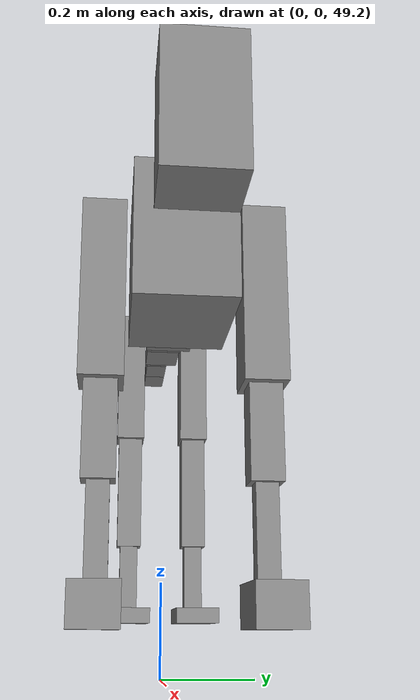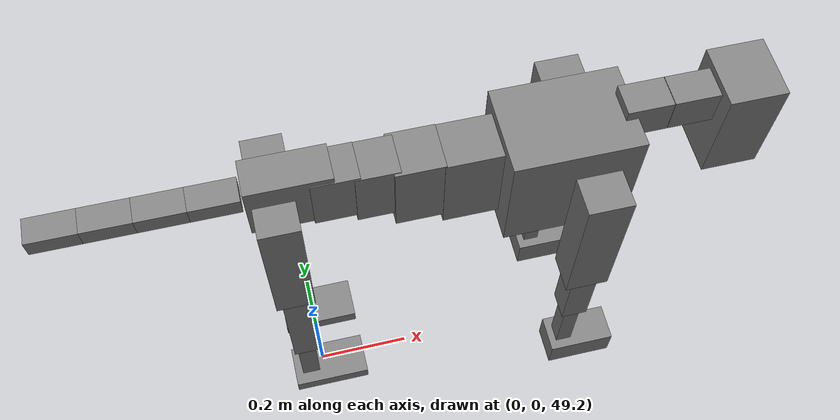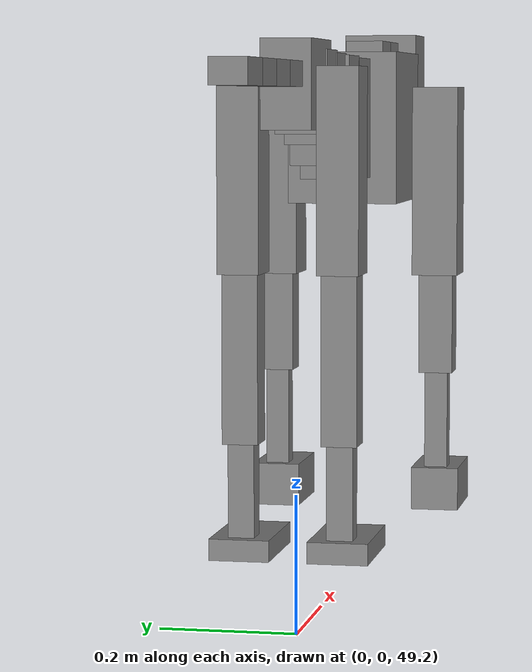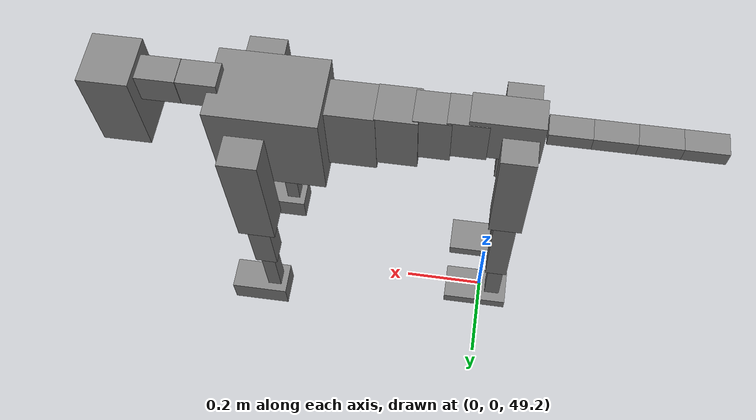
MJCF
<mujoco model="dog">

    <default>
        <joint armature="0.02" stiffness="1" damping="0.2" limited="true"/>
        <geom condim="3" friction="1 0.05 0.05" margin="0.01"/>
        <motor ctrllimited="true" ctrlrange="-1.0 1.0" forcelimited="true" gear="50"/>
    </default>

    <compiler inertiafromgeom="true" angle="radian"/>

    <option timestep="0.016" iterations="50" tolerance="1e-10" solver="Newton" jacobian="dense" cone="pyramidal"/>

    <size nconmax="20000" njmax="60000" nstack="5000000"/>
    <visual>
        <map force="0.1" zfar="30"/>
        <rgba haze="0.15 0.25 0.35 1"/>
        <quality shadowsize="2048"/>
        <global offwidth="800" offheight="800"/>
    </visual>

    <asset>
        <texture type="skybox" builtin="gradient" rgb1="0.3 0.5 0.7" rgb2="0 0 0" width="512" height="512"/>
        <texture name="texplane" type="2d" builtin="checker" rgb1=".2 .3 .4" rgb2=".1 0.15 0.2" width="512" height="512"
                 mark="cross" markrgb=".8 .8 .8"/>
        <texture name="texgeom" type="cube" builtin="flat" mark="cross" width="127" height="1278" rgb1="0.8 0.6 0.4"
                 rgb2="0.8 0.6 0.4" markrgb="1 1 1" random="0.01"/>

        <material name="matplane" reflectance="0.3" texture="texplane" texrepeat="1 1" texuniform="true"/>
        <material name="matgeom" texture="texgeom" texuniform="true" rgba="0.8 0.6 .4 1"/>
    </asset>

    <worldbody>
        <geom name="floor" pos="0 0 0" size="0 0 .25" type="plane" material="matplane" condim="3"/>

        <light directional="false" diffuse=".2 .2 .2" specular="0 0 0" pos="0 0 5" dir="0 0 -1" castshadow="false"/>
        <light mode="targetbodycom" target="torso" directional="false" diffuse=".8 .8 .8" specular="0.3 0.3 0.3"
               pos="0 0 4.0" dir="0 0 -1"/>

        <body name="root" pos="0 0 50">
            <freejoint name="root_1"/>
            <geom type="box" pos="0 0 -0.02" size="0.0774  0.0358  0.063" density="2030"/>

            <body name="spine1" pos="0.054 0 0">
                <joint name="spine1_y" axis="0 1 0" range="0 0.7" limited="true"/>
                <geom type="box" pos="0.02375 0 -0.03" size="0.04375  0.0375  0.05985" density="2030"/>

                <body name="spine2" pos="0.0612 0 0">
                    <joint name="spine2_y" axis="0 1 0" range="-0.15 0.15" limited="true"/>
                    <geom type="box" pos="0.03555  0  -0.04" size="0.04055  0.039  0.06615" density="2030"/>

                    <body name="spine3" pos="0.0730 0 0">
                        <joint name="spine3_y" axis="0 1 0" range="-0.15 0.15" limited="true"/>
                        <geom type="box" pos="0.03555  0  -0.057" size="0.04555  0.0445  0.081" density="2030"/>

                        <body name="spine4" pos="0.0780 0 0">
                            <joint name="spine4_y" axis="0 1 0" range="-0.15 0.15" limited="true"/>
                            <geom type="box" pos="0.05265  0  -0.07" size="0.05265  0.045  0.09135" density="2030"/>

                            <body name="torso" pos="0.1082 0 0">
                                <joint name="torso_y" axis="0 1 0" range="-0.15 0.15" limited="true"/>
                                <geom type="box" pos="0.11925  0  -0.085" size="0.11925  0.085  0.11745"
                                      density="2030"/>

                                <body name="neck1" pos="0.2160  0   0.0180">
                                    <joint name="neck1_y" axis="0 1 0" range="-1.2  -1" limited="true"/>
                                    <geom type="box" pos="0.0423  0  0" size="0.0423  0.03  0.036" density="2325"/>

                                    <body name="neck2" pos="0.0853  0  0">
                                        <joint name="neck2_y" axis="0 1 0" range="0.1  0" limited="true"/>
                                        <geom type="box" pos="0.0423  0  0" size="0.0423  0.03  0.036" density="2325"/>

                                        <body name="head" pos="0.0853  0  0">
                                            <joint name="head_y" axis="0 1 0" range="-0.3  -0.2" limited="true"/>
                                            <geom type="box" pos="0.0531  0  -0.055" size="0.0531  0.06  0.1044"
                                                  density="4030"/>

                                        </body>
                                    </body>
                                </body>

                                <body name="front_shoulder" pos="0.156  0   -0.0480">
                                    <joint name="front_shoulder_y" axis="0 1 0" range="-1 1.5" limited="true"/>
                                    <geom type="box" pos="0 0.13 -0.1232" size="0.0421  0.0360  0.1498" density="1158"/>
                                    <geom type="box" pos="0 -0.13 -0.1232" size="0.0421  0.0360  0.1498"
                                          density="1158"/>

                                    <body name="front_elbow" pos="0  0  -0.2464">
                                        <joint name="front_elbow_y" axis="0 1 0" range="-2 0" limited="true"/>
                                        <geom type="box" pos="0 0.13 -0.0922" size="0.0264  0.0269  0.0922"
                                              density="1081"/>
                                        <geom type="box" pos="0 -0.13 -0.0922" size="0.0264  0.0269  0.0922"
                                              density="1081"/>

                                        <body name="front_wrist" pos="0  0  -0.1845">
                                            <joint name="front_wrist_y" axis="0 1 0" range="-0.2 0" limited="true"/>
                                            <geom type="box" pos="0 0.13 -0.0843" size="0.0164  0.0182  0.0974"
                                                  density="1664"/>
                                            <geom type="box" pos="0 -0.13 -0.0843" size="0.0164  0.0182  0.0974"
                                                  density="1664"/>

                                            <body name="front_finger_end" pos="0  0  -0.1686">
                                                <joint name="front_finger_y" axis="0 1 0" range="-0.4 1"
                                                       limited="true"/>
                                                <geom type="box" pos="0.0377  0.13  -0.0188"
                                                      size="0.0691  0.0377  0.0338" density="1515"/>
                                                <geom type="box" pos="0.0377  -0.13  -0.0188"
                                                      size="0.0691  0.0377  0.0338" density="1515"/>

                                            </body>

                                        </body>
                                    </body>
                                </body>

                            </body>
                        </body>
                    </body>
                </body>
            </body>

            <body name="back_hip" pos="-0.03 0 -0.018">
                <joint name="back_hip_y" axis="0 1 0" range="-1.5 0.3" limited="true"/>
                <geom type="box" pos="0 0.07 -0.1211" size="0.0374  0.0294  0.1439" density="1154"/>
                <geom type="box" pos="0 -0.07 -0.1211" size="0.0374  0.0294  0.1439" density="1154"/>

                <body name="back_knee" pos="0  0  -0.2421">
                    <joint name="back_knee_y" axis="0 1 0" range="0 2.8" limited="true"/>
                    <geom type="box" pos="0 0.07 -0.1230" size="0.0257  0.0254  0.1385" density="1227"/>
                    <geom type="box" pos="0 -0.07 -0.1230" size="0.0257  0.0254  0.1385" density="1227"/>

                    <body name="back_ankle" pos="0  0  -0.2460">
                        <joint name="back_ankle_y" axis="0 1 0" range="-2.2 0" limited="true"/>
                        <geom type="box" pos="0 0.07 -0.0816" size="0.0186  0.0186  0.0928" density="1284"/>
                        <geom type="box" pos="0 -0.07 -0.0816" size="0.0186  0.0186  0.0928" density="1284"/>

                        <body name="back_toe_end" pos="0  0  -0.1632">
                            <joint name="back_toe_y" axis="0 1 0" range="-0.4 1" limited="true"/>
                            <geom type="box" pos="0.0429  0.07  -0.0002" size="0.0786  0.0429  0.0152" density="1515"/>
                            <geom type="box" pos="0.0429  -0.07  -0.0002" size="0.0786  0.0429  0.0152" density="1515"/>

                        </body>
                    </body>
                </body>
            </body>

            <body name="tail1" pos="-0.074 0 -0.006">
                <joint name="tail1_y" axis="0 1 0" range="-0.2 0.2" limited="true"/>
                <geom type="box" pos="-0.0536  0  0" size="0.045  0.025  0.0175" density="1587"/>

                <body name="tail2" pos="-0.09 0 0">
                    <joint name="tail2_y" axis="0 1 0" range="-0.2 0.2" limited="true"/>
                    <geom type="box" pos="-0.0536  0  0" size="0.045  0.025  0.0175" density="1587"/>

                    <body name="tail3" pos="-0.09 0 0">
                        <joint name="tail3_y" axis="0 1 0" range="-0.2 0.2" limited="true"/>
                        <geom type="box" pos="-0.0536  0  0" size="0.045  0.025  0.0175" density="1587"/>

                        <body name="tail4" pos="-0.09 0 0">
                            <joint name="tail4_y" axis="0 1 0" range="-0.2 0.2" limited="true"/>
                            <geom type="box" pos="-0.0536  0  0" size="0.045  0.025  0.0175" density="1587"/>

                        </body>
                    </body>
                </body>
            </body>
        </body>
    </worldbody>

    <actuator>
        <motor joint="spine1_y" forcerange="-150 150     "/>
        <motor joint="spine2_y" forcerange="-150 150     "/>
        <motor joint="spine3_y" forcerange="-150 150     "/>
        <motor joint="spine4_y" forcerange="-150 150     "/>
        <motor joint="torso_y" forcerange="-150 150     "/>
        <motor joint="neck1_y" forcerange="-100 100       "/>
        <motor joint="neck2_y" forcerange="-100 100       "/>
        <motor joint="head_y" forcerange="-150 150       "/>
        <motor joint="front_shoulder_y" forcerange="-176.10 163.81"/>
        <motor joint="front_elbow_y" forcerange="-115.83 180.13"/>
        <motor joint="front_wrist_y" forcerange="-84.14 61.35"/>
        <motor joint="front_finger_y" forcerange="-66.00 95.16"/>
        <motor joint="back_hip_y" forcerange="-299.66 291.97"/>
        <motor joint="back_knee_y" forcerange="-237.22 331.71"/>
        <motor joint="back_angle_y" forcerange="-145.94 50.87"/>
        <motor joint="back_toe_y" forcerange="-138.58 124.52"/>
        <motor joint="tail1_y" forcerange="-50 50     "/>
        <motor joint="tail2_y" forcerange="-50 50     "/>
        <motor joint="tail3_y" forcerange="-50 50     "/>
        <motor joint="tail4_y" forcerange="-50 50     "/>
    </actuator>
</mujoco>
